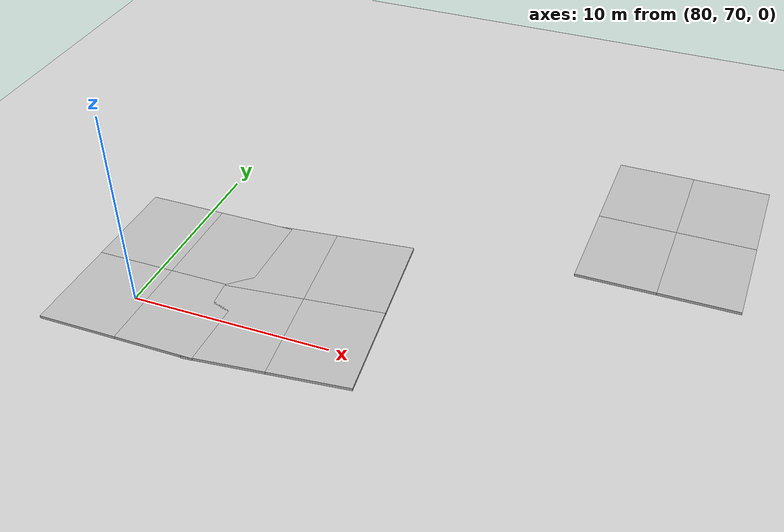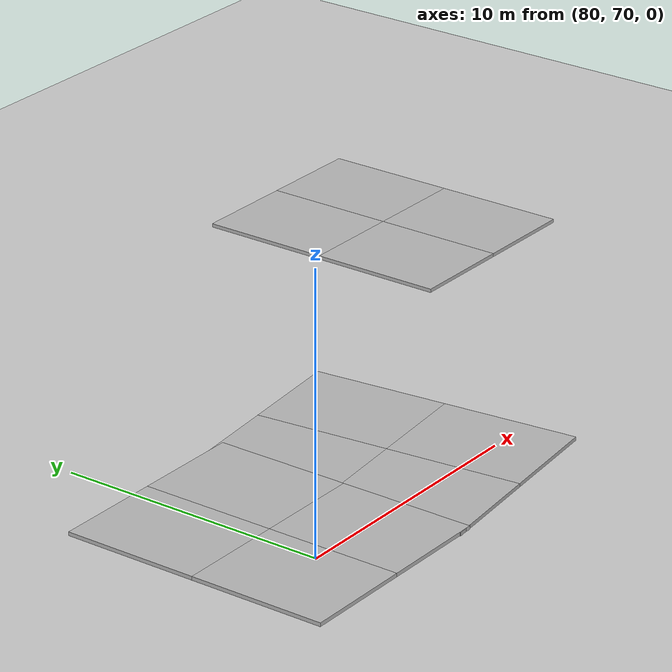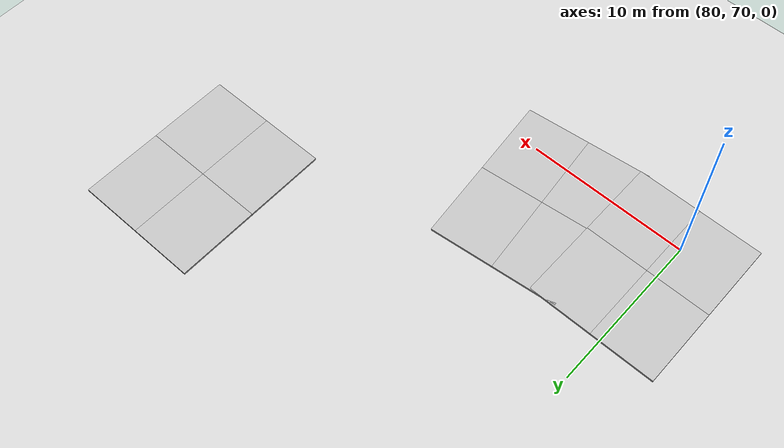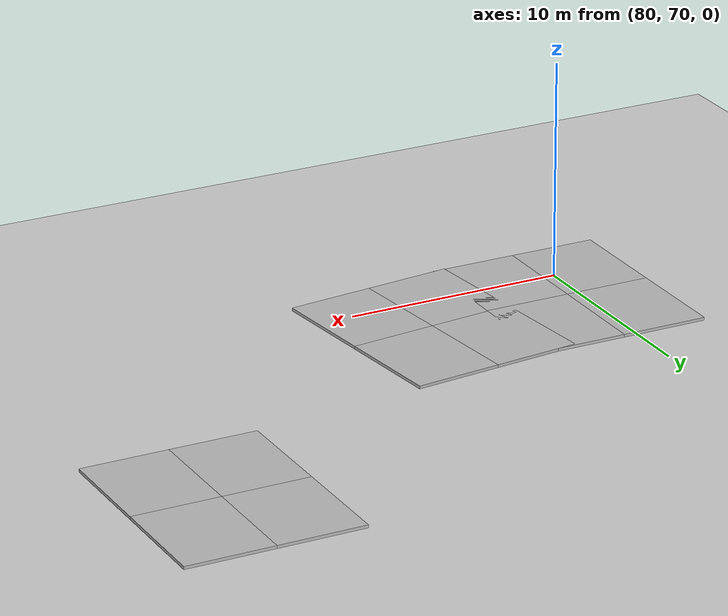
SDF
<sdf version="1.6">
 <world name="default">
  <light name="sun" type="directional">
   <cast_shadows>0</cast_shadows>
   <pose>0 0 10 0 -0 0</pose>
   <diffuse>0.8 0.8 0.8 1</diffuse>
   <specular>0.2 0.2 0.2 1</specular>
   <attenuation>
    <range>1000</range>
    <constant>0.9</constant>
    <linear>0.01</linear>
    <quadratic>0.001</quadratic>
   </attenuation>
   <direction>-0.5 0.1 -0.9</direction>
  </light>
  <model name="ground_plane">
   <static>1</static>
   <link name="link">
    <collision name="collision">
     <geometry><plane><normal>0 0 1</normal><size>80 80</size></plane></geometry>
     <surface><friction><ode><mu>100</mu><mu2>50</mu2></ode></friction></surface>
    </collision>
    <visual name="visual">
     <pose>90 70 0 0 -0 0</pose>
     <cast_shadows>0</cast_shadows>
     <geometry><plane><normal>0 0 1</normal><size>80 80</size></plane></geometry>
     <material>
      <script><uri>file://media/materials/scripts/gazebo.material</uri><name>Gazebo/Tertiary</name></script>
     </material>
    </visual>
    <velocity_decay><linear>0</linear><angular>0</angular></velocity_decay>
   </link>
  </model>
  <physics name="default_physics" default="0" type="ode">
   <max_step_size>0.001</max_step_size>
   <real_time_factor>1</real_time_factor>
   <real_time_update_rate>1000</real_time_update_rate>
  </physics>
  <scene>
   <sky><clouds><speed>12</speed></clouds></sky>
   <ambient>0.4 0.4 0.4 1</ambient>
   <background>0.7 0.7 0.7 1</background>
   <shadows>1</shadows>
  </scene>
  <gravity>0 0 -9.8</gravity>
  <magnetic_field>6e-06 2.3e-05 -4.2e-05</magnetic_field>
  <atmosphere type="adiabatic"/>
  <spherical_coordinates>
   <surface_model>EARTH_WGS84</surface_model>
   <latitude_deg>0</latitude_deg>
   <longitude_deg>0</longitude_deg>
   <elevation>0</elevation>
   <heading_deg>0</heading_deg>
  </spherical_coordinates>
  <light name="user_directional_light_0" type="directional">
   <pose>95.1889 60.0742 1 0 -0 0</pose>
   <diffuse>0.5 0.5 0.5 1</diffuse>
   <specular>0.1 0.1 0.1 1</specular>
   <direction>0.1 0.1 -0.9</direction>
   <attenuation>
    <range>20</range>
    <constant>0.5</constant>
    <linear>0.01</linear>
    <quadratic>0.001</quadratic>
   </attenuation>
  </light>
  <model name="mud_box">
   <static>1</static>
   <link name="link">
    <collision name="collision"><geometry><box><size>8 10 0.2</size></box></geometry></collision>
    <visual name="visual_1">
     <pose>-2 2.5 0 0 -0 0</pose>
     <cast_shadows>0</cast_shadows>
     <geometry><box><size>4 5 0.2</size></box></geometry>
     <material>
      <script>
       <uri>model://mud_box/materials/scripts</uri>
       <uri>model://mud_box/materials/textures</uri>
       <name>vrc/mud</name>
      </script>
     </material>
    </visual>
    <visual name="visual_2">
     <pose>2 2.5 0 0 -0 0</pose>
     <cast_shadows>0</cast_shadows>
     <geometry><box><size>4 5 0.2</size></box></geometry>
     <material>
      <script>
       <uri>model://mud_box/materials/scripts</uri>
       <uri>model://mud_box/materials/textures</uri>
       <name>vrc/mud</name>
      </script>
     </material>
    </visual>
    <visual name="visual_3">
     <pose>2 -2.5 0 0 -0 0</pose>
     <cast_shadows>0</cast_shadows>
     <geometry><box><size>4 5 0.2</size></box></geometry>
     <material>
      <script>
       <uri>model://mud_box/materials/scripts</uri>
       <uri>model://mud_box/materials/textures</uri>
       <name>vrc/mud</name>
      </script>
     </material>
    </visual>
    <visual name="visual_4">
     <pose>-2 -2.5 0 0 -0 0</pose>
     <cast_shadows>0</cast_shadows>
     <geometry><box><size>4 5 0.2</size></box></geometry>
     <material>
      <script>
       <uri>model://mud_box/materials/scripts</uri>
       <uri>model://mud_box/materials/textures</uri>
       <name>vrc/mud</name>
      </script>
     </material>
    </visual>
   </link>
   <pose>80.6174 72.2938 0 0 -0 0</pose>
  </model>
  <model name="mud_box_0">
   <static>1</static>
   <link name="link">
    <collision name="collision"><geometry><box><size>8 10 0.2</size></box></geometry></collision>
    <visual name="visual_1">
     <pose>-2 2.5 0 0 -0 0</pose>
     <cast_shadows>0</cast_shadows>
     <geometry><box><size>4 5 0.2</size></box></geometry>
     <material>
      <script>
       <uri>model://mud_box/materials/scripts</uri>
       <uri>model://mud_box/materials/textures</uri>
       <name>vrc/mud</name>
      </script>
     </material>
    </visual>
    <visual name="visual_2">
     <pose>2 2.5 0 0 -0 0</pose>
     <cast_shadows>0</cast_shadows>
     <geometry><box><size>4 5 0.2</size></box></geometry>
     <material>
      <script>
       <uri>model://mud_box/materials/scripts</uri>
       <uri>model://mud_box/materials/textures</uri>
       <name>vrc/mud</name>
      </script>
     </material>
    </visual>
    <visual name="visual_3">
     <pose>2 -2.5 0 0 -0 0</pose>
     <cast_shadows>0</cast_shadows>
     <geometry><box><size>4 5 0.2</size></box></geometry>
     <material>
      <script>
       <uri>model://mud_box/materials/scripts</uri>
       <uri>model://mud_box/materials/textures</uri>
       <name>vrc/mud</name>
      </script>
     </material>
    </visual>
    <visual name="visual_4">
     <pose>-2 -2.5 0 0 -0 0</pose>
     <cast_shadows>0</cast_shadows>
     <geometry><box><size>4 5 0.2</size></box></geometry>
     <material>
      <script>
       <uri>model://mud_box/materials/scripts</uri>
       <uri>model://mud_box/materials/textures</uri>
       <name>vrc/mud</name>
      </script>
     </material>
    </visual>
   </link>
   <pose>87.5062 72.6526 0 0 -0 0.1061</pose>
  </model>
  <model name="mud_box_1">
   <static>1</static>
   <link name="link">
    <collision name="collision"><geometry><box><size>8 10 0.2</size></box></geometry></collision>
    <visual name="visual_1">
     <pose>-2 2.5 0 0 -0 0</pose>
     <cast_shadows>0</cast_shadows>
     <geometry><box><size>4 5 0.2</size></box></geometry>
     <material>
      <script>
       <uri>model://mud_box/materials/scripts</uri>
       <uri>model://mud_box/materials/textures</uri>
       <name>vrc/mud</name>
      </script>
     </material>
    </visual>
    <visual name="visual_2">
     <pose>2 2.5 0 0 -0 0</pose>
     <cast_shadows>0</cast_shadows>
     <geometry><box><size>4 5 0.2</size></box></geometry>
     <material>
      <script>
       <uri>model://mud_box/materials/scripts</uri>
       <uri>model://mud_box/materials/textures</uri>
       <name>vrc/mud</name>
      </script>
     </material>
    </visual>
    <visual name="visual_3">
     <pose>2 -2.5 0 0 -0 0</pose>
     <cast_shadows>0</cast_shadows>
     <geometry><box><size>4 5 0.2</size></box></geometry>
     <material>
      <script>
       <uri>model://mud_box/materials/scripts</uri>
       <uri>model://mud_box/materials/textures</uri>
       <name>vrc/mud</name>
      </script>
     </material>
    </visual>
    <visual name="visual_4">
     <pose>-2 -2.5 0 0 -0 0</pose>
     <cast_shadows>0</cast_shadows>
     <geometry><box><size>4 5 0.2</size></box></geometry>
     <material>
      <script>
       <uri>model://mud_box/materials/scripts</uri>
       <uri>model://mud_box/materials/textures</uri>
       <name>vrc/mud</name>
      </script>
     </material>
    </visual>
   </link>
   <pose>102.941 83.9282 0 0 -0 0</pose>
  </model>
 </world>
</sdf>
